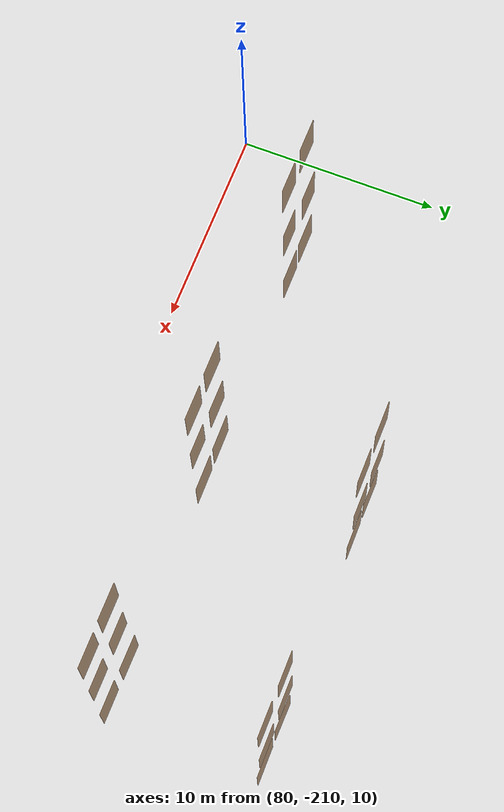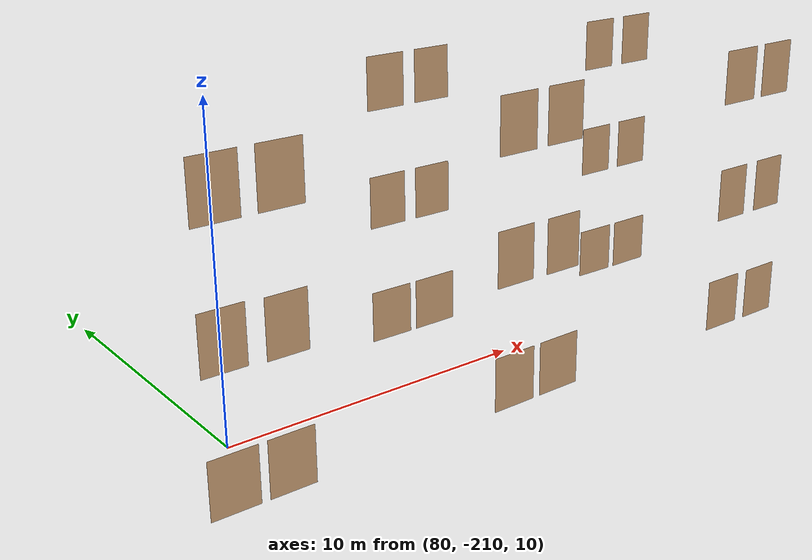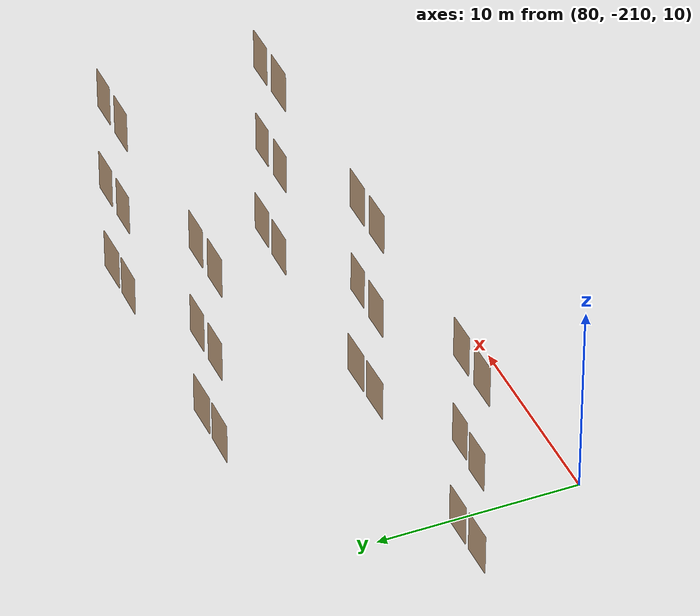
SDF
<sdf version="1.7">
 <world name="sim_world">
  <model name="puerta3188">
   <pose>82.15924913352308 -205.95827727294113 5.0 0 0 1.1254477181727716e-05</pose>
   <link name="right">
    <pose>0 0 1.11 0 0 0</pose>
    <visual name="right_visual">
     <geometry><box><size>1.8475644535801012 0.03 2.2</size></box></geometry>
     <material>
      <ambient>0.5 0.25 0 0.6</ambient>
      <diffuse>0.5 0.25 0 0.6</diffuse>
      <pbr><metal><metalness>0.0</metalness></metal></pbr>
     </material>
    </visual>
    <collision name="right_collision">
     <geometry><box><size>1.8475644535801012 0.03 2.2</size></box></geometry>
     <surface><contact><collide_bitmask>0x02</collide_bitmask></contact></surface>
    </collision>
    <inertial>
     <mass>50.0</mass>
     <inertia><ixx>20.17041666666667</ixx><iyy>34.38956004221975</iyy><izz>14.226643375553076</izz></inertia>
    </inertial>
   </link>
   <joint name="right_joint" type="revolute">
    <parent>world</parent>
    <child>right</child>
    <axis><xyz>0 0 1</xyz><limit><lower>0</lower><upper>1.57</upper></limit></axis>
    <pose>0.9287822267900506 0 0 0 0 0</pose>
   </joint>
   <plugin name="register_component" filename="libregister_component.so">
    <component name="Door">
     <v_max_door>0.5</v_max_door>
     <a_max_door>0.3</a_max_door>
     <a_nom_door>0.15</a_nom_door>
     <dx_min_door>0.01</dx_min_door>
     <f_max_door>500.0</f_max_door>
     <ros_interface>true</ros_interface>
     <door name="puerta3188" type="SwingDoor" left_joint_name="empty_joint" right_joint_name="right_joint"/>
    </component>
   </plugin>
  </model>
  <model name="puerta3189">
   <pose>84.32502946149768 -205.95825289821585 5.0 0 0 -3.141581399112624</pose>
   <link name="right">
    <pose>0 0 1.11 0 0 0</pose>
    <visual name="right_visual">
     <geometry><box><size>1.7990231381485897 0.03 2.2</size></box></geometry>
     <material>
      <ambient>0.5 0.25 0 0.6</ambient>
      <diffuse>0.5 0.25 0 0.6</diffuse>
      <pbr><metal><metalness>0.0</metalness></metal></pbr>
     </material>
    </visual>
    <collision name="right_collision">
     <geometry><box><size>1.7990231381485897 0.03 2.2</size></box></geometry>
     <surface><contact><collide_bitmask>0x02</collide_bitmask></contact></surface>
    </collision>
    <inertial>
     <mass>50.0</mass>
     <inertia><ixx>20.17041666666667</ixx><iyy>33.652017714975</iyy><izz>13.489101048308333</izz></inertia>
    </inertial>
   </link>
   <joint name="right_joint" type="revolute">
    <parent>world</parent>
    <child>right</child>
    <axis><xyz>0 0 -1</xyz><limit><lower>0</lower><upper>1.57</upper></limit></axis>
    <pose>0.9045115690742949 0 0 0 0 0</pose>
   </joint>
   <plugin name="register_component" filename="libregister_component.so">
    <component name="Door">
     <v_max_door>0.5</v_max_door>
     <a_max_door>0.3</a_max_door>
     <a_nom_door>0.15</a_nom_door>
     <dx_min_door>0.01</dx_min_door>
     <f_max_door>500.0</f_max_door>
     <ros_interface>true</ros_interface>
     <door name="puerta3189" type="SwingDoor" left_joint_name="empty_joint" right_joint_name="right_joint"/>
    </component>
   </plugin>
  </model>
  <model name="puerta3190">
   <pose>94.02905045318758 -205.94939121283412 5.0 0 0 0.009230797916316504</pose>
   <link name="right">
    <pose>0 0 1.11 0 0 0</pose>
    <visual name="right_visual">
     <geometry><box><size>1.8887048004519666 0.03 2.2</size></box></geometry>
     <material>
      <ambient>0.5 0.25 0 0.6</ambient>
      <diffuse>0.5 0.25 0 0.6</diffuse>
      <pbr><metal><metalness>0.0</metalness></metal></pbr>
     </material>
    </visual>
    <collision name="right_collision">
     <geometry><box><size>1.8887048004519666 0.03 2.2</size></box></geometry>
     <surface><contact><collide_bitmask>0x02</collide_bitmask></contact></surface>
    </collision>
    <inertial>
     <mass>50.0</mass>
     <inertia><ixx>20.17041666666667</ixx><iyy>35.03002426354294</iyy><izz>14.867107596876265</izz></inertia>
    </inertial>
   </link>
   <joint name="right_joint" type="revolute">
    <parent>world</parent>
    <child>right</child>
    <axis><xyz>0 0 1</xyz><limit><lower>0</lower><upper>1.57</upper></limit></axis>
    <pose>0.9493524002259833 0 0 0 0 0</pose>
   </joint>
   <plugin name="register_component" filename="libregister_component.so">
    <component name="Door">
     <v_max_door>0.5</v_max_door>
     <a_max_door>0.3</a_max_door>
     <a_nom_door>0.15</a_nom_door>
     <dx_min_door>0.01</dx_min_door>
     <f_max_door>500.0</f_max_door>
     <ros_interface>true</ros_interface>
     <door name="puerta3190" type="SwingDoor" left_joint_name="empty_joint" right_joint_name="right_joint"/>
    </component>
   </plugin>
  </model>
  <model name="puerta3191">
   <pose>96.2688775688411 -205.93187896006822 5.0 0 0 -3.1324647574143105</pose>
   <link name="right">
    <pose>0 0 1.11 0 0 0</pose>
    <visual name="right_visual">
     <geometry><box><size>1.9062086800079043 0.03 2.2</size></box></geometry>
     <material>
      <ambient>0.5 0.25 0 0.6</ambient>
      <diffuse>0.5 0.25 0 0.6</diffuse>
      <pbr><metal><metalness>0.0</metalness></metal></pbr>
     </material>
    </visual>
    <collision name="right_collision">
     <geometry><box><size>1.9062086800079043 0.03 2.2</size></box></geometry>
     <surface><contact><collide_bitmask>0x02</collide_bitmask></contact></surface>
    </collision>
    <inertial>
     <mass>50.0</mass>
     <inertia><ixx>20.17041666666667</ixx><iyy>35.30679804890616</iyy><izz>15.143881382239488</izz></inertia>
    </inertial>
   </link>
   <joint name="right_joint" type="revolute">
    <parent>world</parent>
    <child>right</child>
    <axis><xyz>0 0 -1</xyz><limit><lower>0</lower><upper>1.57</upper></limit></axis>
    <pose>0.9581043400039522 0 0 0 0 0</pose>
   </joint>
   <plugin name="register_component" filename="libregister_component.so">
    <component name="Door">
     <v_max_door>0.5</v_max_door>
     <a_max_door>0.3</a_max_door>
     <a_nom_door>0.15</a_nom_door>
     <dx_min_door>0.01</dx_min_door>
     <f_max_door>500.0</f_max_door>
     <ros_interface>true</ros_interface>
     <door name="puerta3191" type="SwingDoor" left_joint_name="empty_joint" right_joint_name="right_joint"/>
    </component>
   </plugin>
  </model>
  <model name="puerta3192">
   <pose>105.90235982210986 -205.93171684411664 5.0 0 0 -0.009477983084432939</pose>
   <link name="right">
    <pose>0 0 1.11 0 0 0</pose>
    <visual name="right_visual">
     <geometry><box><size>1.8196532386380804 0.03 2.2</size></box></geometry>
     <material>
      <ambient>0.5 0.25 0 0.6</ambient>
      <diffuse>0.5 0.25 0 0.6</diffuse>
      <pbr><metal><metalness>0.0</metalness></metal></pbr>
     </material>
    </visual>
    <collision name="right_collision">
     <geometry><box><size>1.8196532386380804 0.03 2.2</size></box></geometry>
     <surface><contact><collide_bitmask>0x02</collide_bitmask></contact></surface>
    </collision>
    <inertial>
     <mass>50.0</mass>
     <inertia><ixx>20.17041666666667</ixx><iyy>33.96307462035857</iyy><izz>13.800157953691897</izz></inertia>
    </inertial>
   </link>
   <joint name="right_joint" type="revolute">
    <parent>world</parent>
    <child>right</child>
    <axis><xyz>0 0 1</xyz><limit><lower>0</lower><upper>1.57</upper></limit></axis>
    <pose>0.9148266193190402 0 0 0 0 0</pose>
   </joint>
   <plugin name="register_component" filename="libregister_component.so">
    <component name="Door">
     <v_max_door>0.5</v_max_door>
     <a_max_door>0.3</a_max_door>
     <a_nom_door>0.15</a_nom_door>
     <dx_min_door>0.01</dx_min_door>
     <f_max_door>500.0</f_max_door>
     <ros_interface>true</ros_interface>
     <door name="puerta3192" type="SwingDoor" left_joint_name="empty_joint" right_joint_name="right_joint"/>
    </component>
   </plugin>
  </model>
  <model name="puerta3193">
   <pose>108.22108517909206 -205.97684920634987 5.0 0 0 -3.1415813991126087</pose>
   <link name="right">
    <pose>0 0 1.11 0 0 0</pose>
    <visual name="right_visual">
     <geometry><box><size>1.752522276241893 0.03 2.2</size></box></geometry>
     <material>
      <ambient>0.5 0.25 0 0.6</ambient>
      <diffuse>0.5 0.25 0 0.6</diffuse>
      <pbr><metal><metalness>0.0</metalness></metal></pbr>
     </material>
    </visual>
    <collision name="right_collision">
     <geometry><box><size>1.752522276241893 0.03 2.2</size></box></geometry>
     <surface><contact><collide_bitmask>0x02</collide_bitmask></contact></surface>
    </collision>
    <inertial>
     <mass>50.0</mass>
     <inertia><ixx>20.17041666666667</ixx><iyy>32.96389303635028</iyy><izz>12.80097636968361</izz></inertia>
    </inertial>
   </link>
   <joint name="right_joint" type="revolute">
    <parent>world</parent>
    <child>right</child>
    <axis><xyz>0 0 -1</xyz><limit><lower>0</lower><upper>1.57</upper></limit></axis>
    <pose>0.8812611381209465 0 0 0 0 0</pose>
   </joint>
   <plugin name="register_component" filename="libregister_component.so">
    <component name="Door">
     <v_max_door>0.5</v_max_door>
     <a_max_door>0.3</a_max_door>
     <a_nom_door>0.15</a_nom_door>
     <dx_min_door>0.01</dx_min_door>
     <f_max_door>500.0</f_max_door>
     <ros_interface>true</ros_interface>
     <door name="puerta3193" type="SwingDoor" left_joint_name="empty_joint" right_joint_name="right_joint"/>
    </component>
   </plugin>
  </model>
  <model name="puerta3194">
   <pose>94.01328151668216 -197.9826016907555 5.0 0 0 -0.010658223736414105</pose>
   <link name="right">
    <pose>0 0 1.11 0 0 0</pose>
    <visual name="right_visual">
     <geometry><box><size>1.9192333254318166 0.03 2.2</size></box></geometry>
     <material>
      <ambient>0.5 0.25 0 0.6</ambient>
      <diffuse>0.5 0.25 0 0.6</diffuse>
      <pbr><metal><metalness>0.0</metalness></metal></pbr>
     </material>
    </visual>
    <collision name="right_collision">
     <geometry><box><size>1.9192333254318166 0.03 2.2</size></box></geometry>
     <surface><contact><collide_bitmask>0x02</collide_bitmask></contact></surface>
    </collision>
    <inertial>
     <mass>50.0</mass>
     <inertia><ixx>20.17041666666667</ixx><iyy>35.51440232270029</iyy><izz>15.351485656033622</izz></inertia>
    </inertial>
   </link>
   <joint name="right_joint" type="revolute">
    <parent>world</parent>
    <child>right</child>
    <axis><xyz>0 0 -1</xyz><limit><lower>0</lower><upper>1.57</upper></limit></axis>
    <pose>0.9646166627159083 0 0 0 0 0</pose>
   </joint>
   <plugin name="register_component" filename="libregister_component.so">
    <component name="Door">
     <v_max_door>0.5</v_max_door>
     <a_max_door>0.3</a_max_door>
     <a_nom_door>0.15</a_nom_door>
     <dx_min_door>0.01</dx_min_door>
     <f_max_door>500.0</f_max_door>
     <ros_interface>true</ros_interface>
     <door name="puerta3194" type="SwingDoor" left_joint_name="empty_joint" right_joint_name="right_joint"/>
    </component>
   </plugin>
  </model>
  <model name="puerta3195">
   <pose>96.27716475465047 -197.98722987786726 5.0 0 0 -3.1359254523855338</pose>
   <link name="right">
    <pose>0 0 1.11 0 0 0</pose>
    <visual name="right_visual">
     <geometry><box><size>1.983698172277021 0.03 2.2</size></box></geometry>
     <material>
      <ambient>0.5 0.25 0 0.6</ambient>
      <diffuse>0.5 0.25 0 0.6</diffuse>
      <pbr><metal><metalness>0.0</metalness></metal></pbr>
     </material>
    </visual>
    <collision name="right_collision">
     <geometry><box><size>1.983698172277021 0.03 2.2</size></box></geometry>
     <surface><contact><collide_bitmask>0x02</collide_bitmask></contact></surface>
    </collision>
    <inertial>
     <mass>50.0</mass>
     <inertia><ixx>20.17041666666667</ixx><iyy>36.562743494563314</iyy><izz>16.399826827896643</izz></inertia>
    </inertial>
   </link>
   <joint name="right_joint" type="revolute">
    <parent>world</parent>
    <child>right</child>
    <axis><xyz>0 0 1</xyz><limit><lower>0</lower><upper>1.57</upper></limit></axis>
    <pose>0.9968490861385105 0 0 0 0 0</pose>
   </joint>
   <plugin name="register_component" filename="libregister_component.so">
    <component name="Door">
     <v_max_door>0.5</v_max_door>
     <a_max_door>0.3</a_max_door>
     <a_nom_door>0.15</a_nom_door>
     <dx_min_door>0.01</dx_min_door>
     <f_max_door>500.0</f_max_door>
     <ros_interface>true</ros_interface>
     <door name="puerta3195" type="SwingDoor" left_joint_name="empty_joint" right_joint_name="right_joint"/>
    </component>
   </plugin>
  </model>
  <model name="puerta3196">
   <pose>105.95152777842469 -197.99641043112223 5.0 0 0 -0.015915284030888845</pose>
   <link name="right">
    <pose>0 0 1.11 0 0 0</pose>
    <visual name="right_visual">
     <geometry><box><size>1.864626994683608 0.03 2.2</size></box></geometry>
     <material>
      <ambient>0.5 0.25 0 0.6</ambient>
      <diffuse>0.5 0.25 0 0.6</diffuse>
      <pbr><metal><metalness>0.0</metalness></metal></pbr>
     </material>
    </visual>
    <collision name="right_collision">
     <geometry><box><size>1.864626994683608 0.03 2.2</size></box></geometry>
     <surface><contact><collide_bitmask>0x02</collide_bitmask></contact></surface>
    </collision>
    <inertial>
     <mass>50.0</mass>
     <inertia><ixx>20.17041666666667</ixx><iyy>34.65347428876177</iyy><izz>14.490557622095103</izz></inertia>
    </inertial>
   </link>
   <joint name="right_joint" type="revolute">
    <parent>world</parent>
    <child>right</child>
    <axis><xyz>0 0 -1</xyz><limit><lower>0</lower><upper>1.57</upper></limit></axis>
    <pose>0.937313497341804 0 0 0 0 0</pose>
   </joint>
   <plugin name="register_component" filename="libregister_component.so">
    <component name="Door">
     <v_max_door>0.5</v_max_door>
     <a_max_door>0.3</a_max_door>
     <a_nom_door>0.15</a_nom_door>
     <dx_min_door>0.01</dx_min_door>
     <f_max_door>500.0</f_max_door>
     <ros_interface>true</ros_interface>
     <door name="puerta3196" type="SwingDoor" left_joint_name="empty_joint" right_joint_name="right_joint"/>
    </component>
   </plugin>
  </model>
  <model name="puerta3197">
   <pose>108.2042601768973 -198.0063725608398 5.0 0 0 -3.136551278785995</pose>
   <link name="right">
    <pose>0 0 1.11 0 0 0</pose>
    <visual name="right_visual">
     <geometry><box><size>1.9541940499670265 0.03 2.2</size></box></geometry>
     <material>
      <ambient>0.5 0.25 0 0.6</ambient>
      <diffuse>0.5 0.25 0 0.6</diffuse>
      <pbr><metal><metalness>0.0</metalness></metal></pbr>
     </material>
    </visual>
    <collision name="right_collision">
     <geometry><box><size>1.9541940499670265 0.03 2.2</size></box></geometry>
     <surface><contact><collide_bitmask>0x02</collide_bitmask></contact></surface>
    </collision>
    <inertial>
     <mass>50.0</mass>
     <inertia><ixx>20.17041666666667</ixx><iyy>36.078643270527216</iyy><izz>15.915726603860541</izz></inertia>
    </inertial>
   </link>
   <joint name="right_joint" type="revolute">
    <parent>world</parent>
    <child>right</child>
    <axis><xyz>0 0 1</xyz><limit><lower>0</lower><upper>1.57</upper></limit></axis>
    <pose>0.9820970249835133 0 0 0 0 0</pose>
   </joint>
   <plugin name="register_component" filename="libregister_component.so">
    <component name="Door">
     <v_max_door>0.5</v_max_door>
     <a_max_door>0.3</a_max_door>
     <a_nom_door>0.15</a_nom_door>
     <dx_min_door>0.01</dx_min_door>
     <f_max_door>500.0</f_max_door>
     <ros_interface>true</ros_interface>
     <door name="puerta3197" type="SwingDoor" left_joint_name="empty_joint" right_joint_name="right_joint"/>
    </component>
   </plugin>
  </model>
  <model name="puerta5285">
   <pose>82.13954147286333 -205.83860224147463 10.0 0 0 -4.690877088827965e-06</pose>
   <link name="right">
    <pose>0 0 1.11 0 0 0</pose>
    <visual name="right_visual">
     <geometry><box><size>1.6631631058432637 0.03 2.2</size></box></geometry>
     <material>
      <ambient>0.5 0.25 0 0.6</ambient>
      <diffuse>0.5 0.25 0 0.6</diffuse>
      <pbr><metal><metalness>0.0</metalness></metal></pbr>
     </material>
    </visual>
    <collision name="right_collision">
     <geometry><box><size>1.6631631058432637 0.03 2.2</size></box></geometry>
     <surface><contact><collide_bitmask>0x02</collide_bitmask></contact></surface>
    </collision>
    <inertial>
     <mass>50.0</mass>
     <inertia><ixx>20.17041666666667</ixx><iyy>31.692131319325885</iyy><izz>11.529214652659213</izz></inertia>
    </inertial>
   </link>
   <joint name="right_joint" type="revolute">
    <parent>world</parent>
    <child>right</child>
    <axis><xyz>0 0 1</xyz><limit><lower>0</lower><upper>1.57</upper></limit></axis>
    <pose>0.8365815529216318 0 0 0 0 0</pose>
   </joint>
   <plugin name="register_component" filename="libregister_component.so">
    <component name="Door">
     <v_max_door>0.5</v_max_door>
     <a_max_door>0.3</a_max_door>
     <a_nom_door>0.15</a_nom_door>
     <dx_min_door>0.01</dx_min_door>
     <f_max_door>500.0</f_max_door>
     <ros_interface>true</ros_interface>
     <door name="puerta5285" type="SwingDoor" left_joint_name="empty_joint" right_joint_name="right_joint"/>
    </component>
   </plugin>
  </model>
  <model name="puerta5286">
   <pose>84.35880695970155 -205.98965787430635 10.0 0 0 3.141587962712728</pose>
   <link name="right">
    <pose>0 0 1.11 0 0 0</pose>
    <visual name="right_visual">
     <geometry><box><size>1.5701956838747686 0.03 2.2</size></box></geometry>
     <material>
      <ambient>0.5 0.25 0 0.6</ambient>
      <diffuse>0.5 0.25 0 0.6</diffuse>
      <pbr><metal><metalness>0.0</metalness></metal></pbr>
     </material>
    </visual>
    <collision name="right_collision">
     <geometry><box><size>1.5701956838747686 0.03 2.2</size></box></geometry>
     <surface><contact><collide_bitmask>0x02</collide_bitmask></contact></surface>
    </collision>
    <inertial>
     <mass>50.0</mass>
     <inertia><ixx>20.17041666666667</ixx><iyy>30.439643690245642</iyy><izz>10.27672702357897</izz></inertia>
    </inertial>
   </link>
   <joint name="right_joint" type="revolute">
    <parent>world</parent>
    <child>right</child>
    <axis><xyz>0 0 -1</xyz><limit><lower>0</lower><upper>1.57</upper></limit></axis>
    <pose>0.7900978419373843 0 0 0 0 0</pose>
   </joint>
   <plugin name="register_component" filename="libregister_component.so">
    <component name="Door">
     <v_max_door>0.5</v_max_door>
     <a_max_door>0.3</a_max_door>
     <a_nom_door>0.15</a_nom_door>
     <dx_min_door>0.01</dx_min_door>
     <f_max_door>500.0</f_max_door>
     <ros_interface>true</ros_interface>
     <door name="puerta5286" type="SwingDoor" left_joint_name="empty_joint" right_joint_name="right_joint"/>
    </component>
   </plugin>
  </model>
  <model name="puerta5287">
   <pose>93.99116953122171 -205.96647909515627 10.0 0 0 -4.690877069001918e-06</pose>
   <link name="right">
    <pose>0 0 1.11 0 0 0</pose>
    <visual name="right_visual">
     <geometry><box><size>1.6864228534488994 0.03 2.2</size></box></geometry>
     <material>
      <ambient>0.5 0.25 0 0.6</ambient>
      <diffuse>0.5 0.25 0 0.6</diffuse>
      <pbr><metal><metalness>0.0</metalness></metal></pbr>
     </material>
    </visual>
    <collision name="right_collision">
     <geometry><box><size>1.6864228534488994 0.03 2.2</size></box></geometry>
     <surface><contact><collide_bitmask>0x02</collide_bitmask></contact></surface>
    </collision>
    <inertial>
     <mass>50.0</mass>
     <inertia><ixx>20.17041666666667</ixx><iyy>32.016758502644706</iyy><izz>11.853841835978036</izz></inertia>
    </inertial>
   </link>
   <joint name="right_joint" type="revolute">
    <parent>world</parent>
    <child>right</child>
    <axis><xyz>0 0 1</xyz><limit><lower>0</lower><upper>1.57</upper></limit></axis>
    <pose>0.8482114267244497 0 0 0 0 0</pose>
   </joint>
   <plugin name="register_component" filename="libregister_component.so">
    <component name="Door">
     <v_max_door>0.5</v_max_door>
     <a_max_door>0.3</a_max_door>
     <a_nom_door>0.15</a_nom_door>
     <dx_min_door>0.01</dx_min_door>
     <f_max_door>500.0</f_max_door>
     <ros_interface>true</ros_interface>
     <door name="puerta5287" type="SwingDoor" left_joint_name="empty_joint" right_joint_name="right_joint"/>
    </component>
   </plugin>
  </model>
  <model name="puerta5288">
   <pose>96.28017896713425 -206.01297354360287 10.0 0 0 3.1415879627127103</pose>
   <link name="right">
    <pose>0 0 1.11 0 0 0</pose>
    <visual name="right_visual">
     <geometry><box><size>1.5701956838747686 0.03 2.2</size></box></geometry>
     <material>
      <ambient>0.5 0.25 0 0.6</ambient>
      <diffuse>0.5 0.25 0 0.6</diffuse>
      <pbr><metal><metalness>0.0</metalness></metal></pbr>
     </material>
    </visual>
    <collision name="right_collision">
     <geometry><box><size>1.5701956838747686 0.03 2.2</size></box></geometry>
     <surface><contact><collide_bitmask>0x02</collide_bitmask></contact></surface>
    </collision>
    <inertial>
     <mass>50.0</mass>
     <inertia><ixx>20.17041666666667</ixx><iyy>30.439643690245642</iyy><izz>10.27672702357897</izz></inertia>
    </inertial>
   </link>
   <joint name="right_joint" type="revolute">
    <parent>world</parent>
    <child>right</child>
    <axis><xyz>0 0 -1</xyz><limit><lower>0</lower><upper>1.57</upper></limit></axis>
    <pose>0.7900978419373843 0 0 0 0 0</pose>
   </joint>
   <plugin name="register_component" filename="libregister_component.so">
    <component name="Door">
     <v_max_door>0.5</v_max_door>
     <a_max_door>0.3</a_max_door>
     <a_nom_door>0.15</a_nom_door>
     <dx_min_door>0.01</dx_min_door>
     <f_max_door>500.0</f_max_door>
     <ros_interface>true</ros_interface>
     <door name="puerta5288" type="SwingDoor" left_joint_name="empty_joint" right_joint_name="right_joint"/>
    </component>
   </plugin>
  </model>
  <model name="puerta5289">
   <pose>105.91835631222857 -206.02461284468387 10.0 0 0 -4.690877081433655e-06</pose>
   <link name="right">
    <pose>0 0 1.11 0 0 0</pose>
    <visual name="right_visual">
     <geometry><box><size>1.5818255576775722 0.03 2.2</size></box></geometry>
     <material>
      <ambient>0.5 0.25 0 0.6</ambient>
      <diffuse>0.5 0.25 0 0.6</diffuse>
      <pbr><metal><metalness>0.0</metalness></metal></pbr>
     </material>
    </visual>
    <collision name="right_collision">
     <geometry><box><size>1.5818255576775722 0.03 2.2</size></box></geometry>
     <surface><contact><collide_bitmask>0x02</collide_bitmask></contact></surface>
    </collision>
    <inertial>
     <mass>50.0</mass>
     <inertia><ixx>20.17041666666667</ixx><iyy>30.592383728841515</iyy><izz>10.429467062174844</izz></inertia>
    </inertial>
   </link>
   <joint name="right_joint" type="revolute">
    <parent>world</parent>
    <child>right</child>
    <axis><xyz>0 0 1</xyz><limit><lower>0</lower><upper>1.57</upper></limit></axis>
    <pose>0.7959127788387861 0 0 0 0 0</pose>
   </joint>
   <plugin name="register_component" filename="libregister_component.so">
    <component name="Door">
     <v_max_door>0.5</v_max_door>
     <a_max_door>0.3</a_max_door>
     <a_nom_door>0.15</a_nom_door>
     <dx_min_door>0.01</dx_min_door>
     <f_max_door>500.0</f_max_door>
     <ros_interface>true</ros_interface>
     <door name="puerta5289" type="SwingDoor" left_joint_name="empty_joint" right_joint_name="right_joint"/>
    </component>
   </plugin>
  </model>
  <model name="puerta5290">
   <pose>108.19573609238779 -206.0246235275925 10.0 0 0 3.141587962712694</pose>
   <link name="right">
    <pose>0 0 1.11 0 0 0</pose>
    <visual name="right_visual">
     <geometry><box><size>1.5818255576775864 0.03 2.2</size></box></geometry>
     <material>
      <ambient>0.5 0.25 0 0.6</ambient>
      <diffuse>0.5 0.25 0 0.6</diffuse>
      <pbr><metal><metalness>0.0</metalness></metal></pbr>
     </material>
    </visual>
    <collision name="right_collision">
     <geometry><box><size>1.5818255576775864 0.03 2.2</size></box></geometry>
     <surface><contact><collide_bitmask>0x02</collide_bitmask></contact></surface>
    </collision>
    <inertial>
     <mass>50.0</mass>
     <inertia><ixx>20.17041666666667</ixx><iyy>30.5923837288417</iyy><izz>10.42946706217503</izz></inertia>
    </inertial>
   </link>
   <joint name="right_joint" type="revolute">
    <parent>world</parent>
    <child>right</child>
    <axis><xyz>0 0 -1</xyz><limit><lower>0</lower><upper>1.57</upper></limit></axis>
    <pose>0.7959127788387932 0 0 0 0 0</pose>
   </joint>
   <plugin name="register_component" filename="libregister_component.so">
    <component name="Door">
     <v_max_door>0.5</v_max_door>
     <a_max_door>0.3</a_max_door>
     <a_nom_door>0.15</a_nom_door>
     <dx_min_door>0.01</dx_min_door>
     <f_max_door>500.0</f_max_door>
     <ros_interface>true</ros_interface>
     <door name="puerta5290" type="SwingDoor" left_joint_name="empty_joint" right_joint_name="right_joint"/>
    </component>
   </plugin>
  </model>
  <model name="puerta5291">
   <pose>108.2480552193098 -197.84467151919165 10.0 0 0 3.14158796271271</pose>
   <link name="right">
    <pose>0 0 1.11 0 0 0</pose>
    <visual name="right_visual">
     <geometry><box><size>1.709646816827483 0.03 2.2</size></box></geometry>
     <material>
      <ambient>0.5 0.25 0 0.6</ambient>
      <diffuse>0.5 0.25 0 0.6</diffuse>
      <pbr><metal><metalness>0.0</metalness></metal></pbr>
     </material>
    </visual>
    <collision name="right_collision">
     <geometry><box><size>1.709646816827483 0.03 2.2</size></box></geometry>
     <surface><contact><collide_bitmask>0x02</collide_bitmask></contact></surface>
    </collision>
    <inertial>
     <mass>50.0</mass>
     <inertia><ixx>20.17041666666667</ixx><iyy>32.34538432620145</iyy><izz>12.182467659534773</izz></inertia>
    </inertial>
   </link>
   <joint name="right_joint" type="revolute">
    <parent>world</parent>
    <child>right</child>
    <axis><xyz>0 0 1</xyz><limit><lower>0</lower><upper>1.57</upper></limit></axis>
    <pose>0.8598234084137415 0 0 0 0 0</pose>
   </joint>
   <plugin name="register_component" filename="libregister_component.so">
    <component name="Door">
     <v_max_door>0.5</v_max_door>
     <a_max_door>0.3</a_max_door>
     <a_nom_door>0.15</a_nom_door>
     <dx_min_door>0.01</dx_min_door>
     <f_max_door>500.0</f_max_door>
     <ros_interface>true</ros_interface>
     <door name="puerta5291" type="SwingDoor" left_joint_name="empty_joint" right_joint_name="right_joint"/>
    </component>
   </plugin>
  </model>
  <model name="puerta5292">
   <pose>105.93002455718172 -197.8446606455948 10.0 0 0 -4.690877070411735e-06</pose>
   <link name="right">
    <pose>0 0 1.11 0 0 0</pose>
    <visual name="right_visual">
     <geometry><box><size>1.6747929796460814 0.03 2.2</size></box></geometry>
     <material>
      <ambient>0.5 0.25 0 0.6</ambient>
      <diffuse>0.5 0.25 0 0.6</diffuse>
      <pbr><metal><metalness>0.0</metalness></metal></pbr>
     </material>
    </visual>
    <collision name="right_collision">
     <geometry><box><size>1.6747929796460814 0.03 2.2</size></box></geometry>
     <surface><contact><collide_bitmask>0x02</collide_bitmask></contact></surface>
    </collision>
    <inertial>
     <mass>50.0</mass>
     <inertia><ixx>20.17041666666667</ixx><iyy>31.85388135279917</iyy><izz>11.6909646861325</izz></inertia>
    </inertial>
   </link>
   <joint name="right_joint" type="revolute">
    <parent>world</parent>
    <child>right</child>
    <axis><xyz>0 0 -1</xyz><limit><lower>0</lower><upper>1.57</upper></limit></axis>
    <pose>0.8423964898230407 0 0 0 0 0</pose>
   </joint>
   <plugin name="register_component" filename="libregister_component.so">
    <component name="Door">
     <v_max_door>0.5</v_max_door>
     <a_max_door>0.3</a_max_door>
     <a_nom_door>0.15</a_nom_door>
     <dx_min_door>0.01</dx_min_door>
     <f_max_door>500.0</f_max_door>
     <ros_interface>true</ros_interface>
     <door name="puerta5292" type="SwingDoor" left_joint_name="empty_joint" right_joint_name="right_joint"/>
    </component>
   </plugin>
  </model>
  <model name="puerta5293">
   <pose>96.29182926558745 -197.84461543400545 10.0 0 0 3.1415879627127263</pose>
   <link name="right">
    <pose>0 0 1.11 0 0 0</pose>
    <visual name="right_visual">
     <geometry><box><size>1.709646816827483 0.03 2.2</size></box></geometry>
     <material>
      <ambient>0.5 0.25 0 0.6</ambient>
      <diffuse>0.5 0.25 0 0.6</diffuse>
      <pbr><metal><metalness>0.0</metalness></metal></pbr>
     </material>
    </visual>
    <collision name="right_collision">
     <geometry><box><size>1.709646816827483 0.03 2.2</size></box></geometry>
     <surface><contact><collide_bitmask>0x02</collide_bitmask></contact></surface>
    </collision>
    <inertial>
     <mass>50.0</mass>
     <inertia><ixx>20.17041666666667</ixx><iyy>32.34538432620145</iyy><izz>12.182467659534773</izz></inertia>
    </inertial>
   </link>
   <joint name="right_joint" type="revolute">
    <parent>world</parent>
    <child>right</child>
    <axis><xyz>0 0 1</xyz><limit><lower>0</lower><upper>1.57</upper></limit></axis>
    <pose>0.8598234084137415 0 0 0 0 0</pose>
   </joint>
   <plugin name="register_component" filename="libregister_component.so">
    <component name="Door">
     <v_max_door>0.5</v_max_door>
     <a_max_door>0.3</a_max_door>
     <a_nom_door>0.15</a_nom_door>
     <dx_min_door>0.01</dx_min_door>
     <f_max_door>500.0</f_max_door>
     <ros_interface>true</ros_interface>
     <door name="puerta5293" type="SwingDoor" left_joint_name="empty_joint" right_joint_name="right_joint"/>
    </component>
   </plugin>
  </model>
  <model name="puerta5294">
   <pose>94.01444953998254 -197.83297487729416 10.0 0 0 -4.690877083228922e-06</pose>
   <link name="right">
    <pose>0 0 1.11 0 0 0</pose>
    <visual name="right_visual">
     <geometry><box><size>1.709646816827483 0.03 2.2</size></box></geometry>
     <material>
      <ambient>0.5 0.25 0 0.6</ambient>
      <diffuse>0.5 0.25 0 0.6</diffuse>
      <pbr><metal><metalness>0.0</metalness></metal></pbr>
     </material>
    </visual>
    <collision name="right_collision">
     <geometry><box><size>1.709646816827483 0.03 2.2</size></box></geometry>
     <surface><contact><collide_bitmask>0x02</collide_bitmask></contact></surface>
    </collision>
    <inertial>
     <mass>50.0</mass>
     <inertia><ixx>20.17041666666667</ixx><iyy>32.34538432620145</iyy><izz>12.182467659534773</izz></inertia>
    </inertial>
   </link>
   <joint name="right_joint" type="revolute">
    <parent>world</parent>
    <child>right</child>
    <axis><xyz>0 0 -1</xyz><limit><lower>0</lower><upper>1.57</upper></limit></axis>
    <pose>0.8598234084137415 0 0 0 0 0</pose>
   </joint>
   <plugin name="register_component" filename="libregister_component.so">
    <component name="Door">
     <v_max_door>0.5</v_max_door>
     <a_max_door>0.3</a_max_door>
     <a_nom_door>0.15</a_nom_door>
     <dx_min_door>0.01</dx_min_door>
     <f_max_door>500.0</f_max_door>
     <ros_interface>true</ros_interface>
     <door name="puerta5294" type="SwingDoor" left_joint_name="empty_joint" right_joint_name="right_joint"/>
    </component>
   </plugin>
  </model>
  <model name="puerta7222">
   <pose>82.10380964502448 -205.9867257171625 15.0 0 0 -3.9980903225599043e-05</pose>
   <link name="right">
    <pose>0 0 1.11 0 0 0</pose>
    <visual name="right_visual">
     <geometry><box><size>1.7078707919638785 0.03 2.2</size></box></geometry>
     <material>
      <ambient>0.5 0.25 0 0.6</ambient>
      <diffuse>0.5 0.25 0 0.6</diffuse>
      <pbr><metal><metalness>0.0</metalness></metal></pbr>
     </material>
    </visual>
    <collision name="right_collision">
     <geometry><box><size>1.7078707919638785 0.03 2.2</size></box></geometry>
     <surface><contact><collide_bitmask>0x02</collide_bitmask></contact></surface>
    </collision>
    <inertial>
     <mass>50.0</mass>
     <inertia><ixx>20.17041666666667</ixx><iyy>32.320094341847195</iyy><izz>12.157177675180524</izz></inertia>
    </inertial>
   </link>
   <joint name="right_joint" type="revolute">
    <parent>world</parent>
    <child>right</child>
    <axis><xyz>0 0 1</xyz><limit><lower>0</lower><upper>1.57</upper></limit></axis>
    <pose>0.8589353959819392 0 0 0 0 0</pose>
   </joint>
   <plugin name="register_component" filename="libregister_component.so">
    <component name="Door">
     <v_max_door>0.5</v_max_door>
     <a_max_door>0.3</a_max_door>
     <a_nom_door>0.15</a_nom_door>
     <dx_min_door>0.01</dx_min_door>
     <f_max_door>500.0</f_max_door>
     <ros_interface>true</ros_interface>
     <door name="puerta7222" type="SwingDoor" left_joint_name="empty_joint" right_joint_name="right_joint"/>
    </component>
   </plugin>
  </model>
  <model name="puerta7223">
   <pose>84.38044018509373 -205.9931937578437 15.0 0 0 3.1415526726865806</pose>
   <link name="right">
    <pose>0 0 1.11 0 0 0</pose>
    <visual name="right_visual">
     <geometry><box><size>1.663161582317444 0.03 2.2</size></box></geometry>
     <material>
      <ambient>0.5 0.25 0 0.6</ambient>
      <diffuse>0.5 0.25 0 0.6</diffuse>
      <pbr><metal><metalness>0.0</metalness></metal></pbr>
     </material>
    </visual>
    <collision name="right_collision">
     <geometry><box><size>1.663161582317444 0.03 2.2</size></box></geometry>
     <surface><contact><collide_bitmask>0x02</collide_bitmask></contact></surface>
    </collision>
    <inertial>
     <mass>50.0</mass>
     <inertia><ixx>20.17041666666667</ixx><iyy>31.692110203736103</iyy><izz>11.529193537069435</izz></inertia>
    </inertial>
   </link>
   <joint name="right_joint" type="revolute">
    <parent>world</parent>
    <child>right</child>
    <axis><xyz>0 0 -1</xyz><limit><lower>0</lower><upper>1.57</upper></limit></axis>
    <pose>0.836580791158722 0 0 0 0 0</pose>
   </joint>
   <plugin name="register_component" filename="libregister_component.so">
    <component name="Door">
     <v_max_door>0.5</v_max_door>
     <a_max_door>0.3</a_max_door>
     <a_nom_door>0.15</a_nom_door>
     <dx_min_door>0.01</dx_min_door>
     <f_max_door>500.0</f_max_door>
     <ros_interface>true</ros_interface>
     <door name="puerta7223" type="SwingDoor" left_joint_name="empty_joint" right_joint_name="right_joint"/>
    </component>
   </plugin>
  </model>
  <model name="puerta7224">
   <pose>94.0107200976428 -205.98720176619713 15.0 0 0 -3.998090320073239e-05</pose>
   <link name="right">
    <pose>0 0 1.11 0 0 0</pose>
    <visual name="right_visual">
     <geometry><box><size>1.701493773033106 0.03 2.2</size></box></geometry>
     <material>
      <ambient>0.5 0.25 0 0.6</ambient>
      <diffuse>0.5 0.25 0 0.6</diffuse>
      <pbr><metal><metalness>0.0</metalness></metal></pbr>
     </material>
    </visual>
    <collision name="right_collision">
     <geometry><box><size>1.701493773033106 0.03 2.2</size></box></geometry>
     <surface><contact><collide_bitmask>0x02</collide_bitmask></contact></surface>
    </collision>
    <inertial>
     <mass>50.0</mass>
     <inertia><ixx>20.17041666666667</ixx><iyy>32.22950441529348</iyy><izz>12.066587748626812</izz></inertia>
    </inertial>
   </link>
   <joint name="right_joint" type="revolute">
    <parent>world</parent>
    <child>right</child>
    <axis><xyz>0 0 1</xyz><limit><lower>0</lower><upper>1.57</upper></limit></axis>
    <pose>0.855746886516553 0 0 0 0 0</pose>
   </joint>
   <plugin name="register_component" filename="libregister_component.so">
    <component name="Door">
     <v_max_door>0.5</v_max_door>
     <a_max_door>0.3</a_max_door>
     <a_nom_door>0.15</a_nom_door>
     <dx_min_door>0.01</dx_min_door>
     <f_max_door>500.0</f_max_door>
     <ros_interface>true</ros_interface>
     <door name="puerta7224" type="SwingDoor" left_joint_name="empty_joint" right_joint_name="right_joint"/>
    </component>
   </plugin>
  </model>
  <model name="puerta7225">
   <pose>96.26822060217185 -205.96812592773318 15.0 0 0 3.141552672686589</pose>
   <link name="right">
    <pose>0 0 1.11 0 0 0</pose>
    <visual name="right_visual">
     <geometry><box><size>1.6822926391097186 0.03 2.2</size></box></geometry>
     <material>
      <ambient>0.5 0.25 0 0.6</ambient>
      <diffuse>0.5 0.25 0 0.6</diffuse>
      <pbr><metal><metalness>0.0</metalness></metal></pbr>
     </material>
    </visual>
    <collision name="right_collision">
     <geometry><box><size>1.6822926391097186 0.03 2.2</size></box></geometry>
     <surface><contact><collide_bitmask>0x02</collide_bitmask></contact></surface>
    </collision>
    <inertial>
     <mass>50.0</mass>
     <inertia><ixx>20.17041666666667</ixx><iyy>31.958785515011428</iyy><izz>11.79586884834476</izz></inertia>
    </inertial>
   </link>
   <joint name="right_joint" type="revolute">
    <parent>world</parent>
    <child>right</child>
    <axis><xyz>0 0 -1</xyz><limit><lower>0</lower><upper>1.57</upper></limit></axis>
    <pose>0.8461463195548593 0 0 0 0 0</pose>
   </joint>
   <plugin name="register_component" filename="libregister_component.so">
    <component name="Door">
     <v_max_door>0.5</v_max_door>
     <a_max_door>0.3</a_max_door>
     <a_nom_door>0.15</a_nom_door>
     <dx_min_door>0.01</dx_min_door>
     <f_max_door>500.0</f_max_door>
     <ros_interface>true</ros_interface>
     <door name="puerta7225" type="SwingDoor" left_joint_name="empty_joint" right_joint_name="right_joint"/>
    </component>
   </plugin>
  </model>
  <model name="puerta7226">
   <pose>105.94958546706155 -205.99405611175408 15.0 0 0 -3.9980903213881935e-05</pose>
   <link name="right">
    <pose>0 0 1.11 0 0 0</pose>
    <visual name="right_visual">
     <geometry><box><size>1.7717110584026163 0.03 2.2</size></box></geometry>
     <material>
      <ambient>0.5 0.25 0 0.6</ambient>
      <diffuse>0.5 0.25 0 0.6</diffuse>
      <pbr><metal><metalness>0.0</metalness></metal></pbr>
     </material>
    </visual>
    <collision name="right_collision">
     <geometry><box><size>1.7717110584026163 0.03 2.2</size></box></geometry>
     <surface><contact><collide_bitmask>0x02</collide_bitmask></contact></surface>
    </collision>
    <inertial>
     <mass>50.0</mass>
     <inertia><ixx>20.17041666666667</ixx><iyy>33.24566697694217</iyy><izz>13.082750310275497</izz></inertia>
    </inertial>
   </link>
   <joint name="right_joint" type="revolute">
    <parent>world</parent>
    <child>right</child>
    <axis><xyz>0 0 1</xyz><limit><lower>0</lower><upper>1.57</upper></limit></axis>
    <pose>0.8908555292013082 0 0 0 0 0</pose>
   </joint>
   <plugin name="register_component" filename="libregister_component.so">
    <component name="Door">
     <v_max_door>0.5</v_max_door>
     <a_max_door>0.3</a_max_door>
     <a_nom_door>0.15</a_nom_door>
     <dx_min_door>0.01</dx_min_door>
     <f_max_door>500.0</f_max_door>
     <ros_interface>true</ros_interface>
     <door name="puerta7226" type="SwingDoor" left_joint_name="empty_joint" right_joint_name="right_joint"/>
    </component>
   </plugin>
  </model>
  <model name="puerta7227">
   <pose>108.18792013120702 -205.96860248808662 15.0 0 0 3.1415526726865637</pose>
   <link name="right">
    <pose>0 0 1.11 0 0 0</pose>
    <visual name="right_visual">
     <geometry><box><size>1.6504075444559272 0.03 2.2</size></box></geometry>
     <material>
      <ambient>0.5 0.25 0 0.6</ambient>
      <diffuse>0.5 0.25 0 0.6</diffuse>
      <pbr><metal><metalness>0.0</metalness></metal></pbr>
     </material>
    </visual>
    <collision name="right_collision">
     <geometry><box><size>1.6504075444559272 0.03 2.2</size></box></geometry>
     <surface><contact><collide_bitmask>0x02</collide_bitmask></contact></surface>
    </collision>
    <inertial>
     <mass>50.0</mass>
     <inertia><ixx>20.17041666666667</ixx><iyy>31.51602109498769</iyy><izz>11.353104428321016</izz></inertia>
    </inertial>
   </link>
   <joint name="right_joint" type="revolute">
    <parent>world</parent>
    <child>right</child>
    <axis><xyz>0 0 -1</xyz><limit><lower>0</lower><upper>1.57</upper></limit></axis>
    <pose>0.8302037722279636 0 0 0 0 0</pose>
   </joint>
   <plugin name="register_component" filename="libregister_component.so">
    <component name="Door">
     <v_max_door>0.5</v_max_door>
     <a_max_door>0.3</a_max_door>
     <a_nom_door>0.15</a_nom_door>
     <dx_min_door>0.01</dx_min_door>
     <f_max_door>500.0</f_max_door>
     <ros_interface>true</ros_interface>
     <door name="puerta7227" type="SwingDoor" left_joint_name="empty_joint" right_joint_name="right_joint"/>
    </component>
   </plugin>
  </model>
  <model name="puerta7228">
   <pose>108.19237874600529 -197.86313129034426 15.0 0 0 3.1415526726865766</pose>
   <link name="right">
    <pose>0 0 1.11 0 0 0</pose>
    <visual name="right_visual">
     <geometry><box><size>1.6516689328158478 0.03 2.2</size></box></geometry>
     <material>
      <ambient>0.5 0.25 0 0.6</ambient>
      <diffuse>0.5 0.25 0 0.6</diffuse>
      <pbr><metal><metalness>0.0</metalness></metal></pbr>
     </material>
    </visual>
    <collision name="right_collision">
     <geometry><box><size>1.6516689328158478 0.03 2.2</size></box></geometry>
     <surface><contact><collide_bitmask>0x02</collide_bitmask></contact></surface>
    </collision>
    <inertial>
     <mass>50.0</mass>
     <inertia><ixx>20.17041666666667</ixx><iyy>31.533376098454344</iyy><izz>11.370459431787674</izz></inertia>
    </inertial>
   </link>
   <joint name="right_joint" type="revolute">
    <parent>world</parent>
    <child>right</child>
    <axis><xyz>0 0 1</xyz><limit><lower>0</lower><upper>1.57</upper></limit></axis>
    <pose>0.8308344664079239 0 0 0 0 0</pose>
   </joint>
   <plugin name="register_component" filename="libregister_component.so">
    <component name="Door">
     <v_max_door>0.5</v_max_door>
     <a_max_door>0.3</a_max_door>
     <a_nom_door>0.15</a_nom_door>
     <dx_min_door>0.01</dx_min_door>
     <f_max_door>500.0</f_max_door>
     <ros_interface>true</ros_interface>
     <door name="puerta7228" type="SwingDoor" left_joint_name="empty_joint" right_joint_name="right_joint"/>
    </component>
   </plugin>
  </model>
  <model name="puerta7229">
   <pose>105.89206237659096 -197.85063566940215 15.0 0 0 -3.998090322446585e-05</pose>
   <link name="right">
    <pose>0 0 1.11 0 0 0</pose>
    <visual name="right_visual">
     <geometry><box><size>1.6392652806098498 0.03 2.2</size></box></geometry>
     <material>
      <ambient>0.5 0.25 0 0.6</ambient>
      <diffuse>0.5 0.25 0 0.6</diffuse>
      <pbr><metal><metalness>0.0</metalness></metal></pbr>
     </material>
    </visual>
    <collision name="right_collision">
     <geometry><box><size>1.6392652806098498 0.03 2.2</size></box></geometry>
     <surface><contact><collide_bitmask>0x02</collide_bitmask></contact></surface>
    </collision>
    <inertial>
     <mass>50.0</mass>
     <inertia><ixx>20.17041666666667</ixx><iyy>31.36329441755371</iyy><izz>11.200377750887041</izz></inertia>
    </inertial>
   </link>
   <joint name="right_joint" type="revolute">
    <parent>world</parent>
    <child>right</child>
    <axis><xyz>0 0 -1</xyz><limit><lower>0</lower><upper>1.57</upper></limit></axis>
    <pose>0.8246326403049249 0 0 0 0 0</pose>
   </joint>
   <plugin name="register_component" filename="libregister_component.so">
    <component name="Door">
     <v_max_door>0.5</v_max_door>
     <a_max_door>0.3</a_max_door>
     <a_nom_door>0.15</a_nom_door>
     <dx_min_door>0.01</dx_min_door>
     <f_max_door>500.0</f_max_door>
     <ros_interface>true</ros_interface>
     <door name="puerta7229" type="SwingDoor" left_joint_name="empty_joint" right_joint_name="right_joint"/>
    </component>
   </plugin>
  </model>
  <model name="puerta7230">
   <pose>96.2815790126136 -197.86265508581266 15.0 0 0 3.141552672686592</pose>
   <link name="right">
    <pose>0 0 1.11 0 0 0</pose>
    <visual name="right_visual">
     <geometry><box><size>1.67647623722783 0.03 2.2</size></box></geometry>
     <material>
      <ambient>0.5 0.25 0 0.6</ambient>
      <diffuse>0.5 0.25 0 0.6</diffuse>
      <pbr><metal><metalness>0.0</metalness></metal></pbr>
     </material>
    </visual>
    <collision name="right_collision">
     <geometry><box><size>1.67647623722783 0.03 2.2</size></box></geometry>
     <surface><contact><collide_bitmask>0x02</collide_bitmask></contact></surface>
    </collision>
    <inertial>
     <mass>50.0</mass>
     <inertia><ixx>20.17041666666667</ixx><iyy>31.8773857249566</iyy><izz>11.71446905828993</izz></inertia>
    </inertial>
   </link>
   <joint name="right_joint" type="revolute">
    <parent>world</parent>
    <child>right</child>
    <axis><xyz>0 0 1</xyz><limit><lower>0</lower><upper>1.57</upper></limit></axis>
    <pose>0.843238118613915 0 0 0 0 0</pose>
   </joint>
   <plugin name="register_component" filename="libregister_component.so">
    <component name="Door">
     <v_max_door>0.5</v_max_door>
     <a_max_door>0.3</a_max_door>
     <a_nom_door>0.15</a_nom_door>
     <dx_min_door>0.01</dx_min_door>
     <f_max_door>500.0</f_max_door>
     <ros_interface>true</ros_interface>
     <door name="puerta7230" type="SwingDoor" left_joint_name="empty_joint" right_joint_name="right_joint"/>
    </component>
   </plugin>
  </model>
  <model name="puerta7231">
   <pose>93.97817825761459 -197.87496664598586 15.0 0 0 -3.998090322348994e-05</pose>
   <link name="right">
    <pose>0 0 1.11 0 0 0</pose>
    <visual name="right_visual">
     <geometry><box><size>1.7446612857951993 0.03 2.2</size></box></geometry>
     <material>
      <ambient>0.5 0.25 0 0.6</ambient>
      <diffuse>0.5 0.25 0 0.6</diffuse>
      <pbr><metal><metalness>0.0</metalness></metal></pbr>
     </material>
    </visual>
    <collision name="right_collision">
     <geometry><box><size>1.7446612857951993 0.03 2.2</size></box></geometry>
     <surface><contact><collide_bitmask>0x02</collide_bitmask></contact></surface>
    </collision>
    <inertial>
     <mass>50.0</mass>
     <inertia><ixx>20.17041666666667</ixx><iyy>32.84934584230233</iyy><izz>12.68642917563566</izz></inertia>
    </inertial>
   </link>
   <joint name="right_joint" type="revolute">
    <parent>world</parent>
    <child>right</child>
    <axis><xyz>0 0 -1</xyz><limit><lower>0</lower><upper>1.57</upper></limit></axis>
    <pose>0.8773306428975997 0 0 0 0 0</pose>
   </joint>
   <plugin name="register_component" filename="libregister_component.so">
    <component name="Door">
     <v_max_door>0.5</v_max_door>
     <a_max_door>0.3</a_max_door>
     <a_nom_door>0.15</a_nom_door>
     <dx_min_door>0.01</dx_min_door>
     <f_max_door>500.0</f_max_door>
     <ros_interface>true</ros_interface>
     <door name="puerta7231" type="SwingDoor" left_joint_name="empty_joint" right_joint_name="right_joint"/>
    </component>
   </plugin>
  </model>
 </world>
</sdf>
